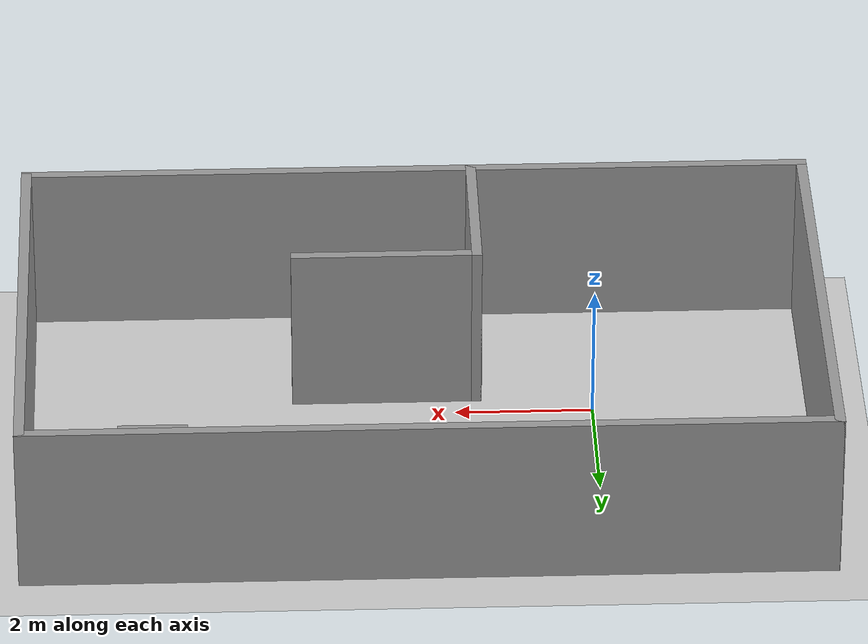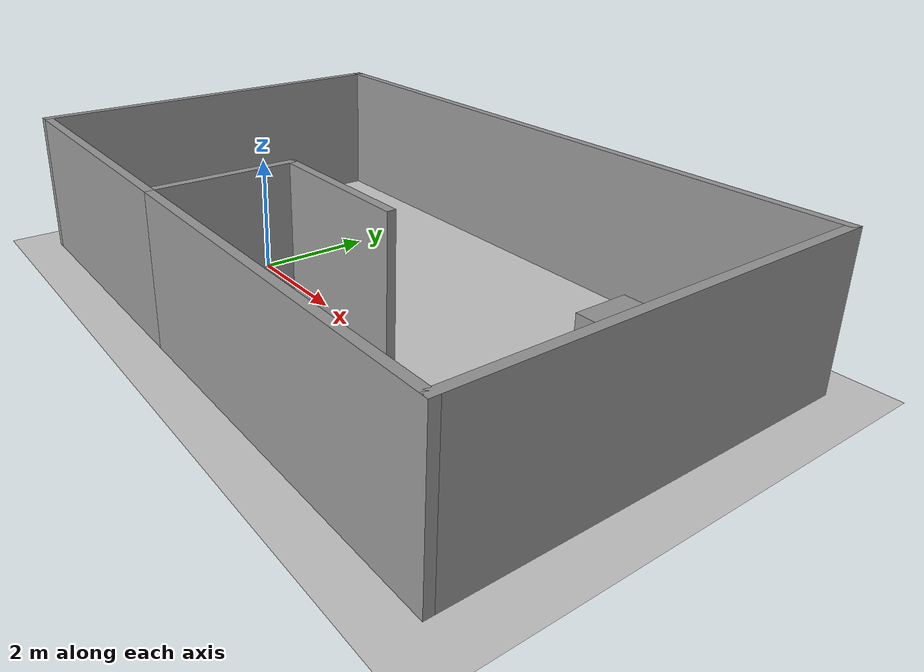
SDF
<sdf version='1.7'>
  <world name='default'>
    <!-- Gazebo Sim System Plugins -->
    <plugin filename="gz-sim-physics-system" name="gz::sim::systems::Physics"/>
    <plugin filename="gz-sim-sensors-system" name="gz::sim::systems::Sensors">
      <render_engine>ogre2</render_engine>
    </plugin>
    <plugin filename="gz-sim-contact-system" name="gz::sim::systems::Contact"/>
    <plugin filename="gz-sim-user-commands-system" name="gz::sim::systems::UserCommands"/>
    <plugin filename="gz-sim-scene-broadcaster-system" name="gz::sim::systems::SceneBroadcaster"/>

    <light name='sun' type='directional'>
      <cast_shadows>1</cast_shadows>
      <pose>0 0 10 0 -0 0</pose>
      <diffuse>0.8 0.8 0.8 1</diffuse>
      <specular>0.2 0.2 0.2 1</specular>
      <attenuation>
        <range>1000</range>
        <constant>0.9</constant>
        <linear>0.01</linear>
        <quadratic>0.001</quadratic>
      </attenuation>
      <direction>-0.5 0.1 -0.9</direction>
      <spot>
        <inner_angle>0</inner_angle>
        <outer_angle>0</outer_angle>
        <falloff>0</falloff>
      </spot>
    </light>
    <model name='ground_plane'>
      <static>1</static>
      <link name='link'>
        <collision name='collision'>
          <geometry>
            <plane>
              <normal>0 0 1</normal>
              <size>100 100</size>
            </plane>
          </geometry>
		<surface>
		  <friction>
		    <ode>
		      <mu>1.0</mu>
		      <mu2>1.0</mu2>
		    </ode>
		  </friction>
		  <contact>
		    <ode/>
		    <collide_bitmask>0xFFFF</collide_bitmask>
		  </contact>
		  <bounce>
		    <restitution>0.0</restitution>
		  </bounce>
		</surface>
          <max_contacts>10</max_contacts>
        </collision>
        <visual name='visual'>
          <cast_shadows>0</cast_shadows>
          <geometry>
            <plane>
              <normal>0 0 1</normal>
              <size>100 100</size>
            </plane>
          </geometry>
          <material>
            <script>
              <uri>file://media/materials/scripts/gazebo.material</uri>
              <name>Gazebo/Grey</name>
            </script>
          </material>
        </visual>
        <self_collide>0</self_collide>
        <enable_wind>0</enable_wind>
        <kinematic>0</kinematic>
      </link>
    </model>
    <gravity>0 0 -9.8</gravity>
    <magnetic_field>6e-06 2.3e-05 -4.2e-05</magnetic_field>
    <atmosphere type='adiabatic'/>
    <physics type='ode'>
      <max_step_size>0.001</max_step_size>
      <real_time_factor>1</real_time_factor>
      <real_time_update_rate>1000</real_time_update_rate>
    </physics>
    <scene>
      <ambient>0.4 0.4 0.4 1</ambient>
      <background>0.7 0.7 0.7 1</background>
      <shadows>1</shadows>
    </scene>
    <audio>
      <device>default</device>
    </audio>
    <wind/>
    <spherical_coordinates>
      <surface_model>EARTH_WGS84</surface_model>
      <latitude_deg>0</latitude_deg>
      <longitude_deg>0</longitude_deg>
      <elevation>0</elevation>
      <heading_deg>0</heading_deg>
    </spherical_coordinates>
    <model name='wall_world'>
      <pose>2.505 0.695 0 0 -0 0</pose>
      <link name='Wall_0'>
        <collision name='Wall_0_Collision'>
          <geometry>
            <box>
              <size>5 0.15 2.5</size>
            </box>
          </geometry>
          <pose>0 0 1.25 0 -0 0</pose>
          <max_contacts>10</max_contacts>
          <surface>
            <contact>
              <ode/>
            </contact>
            <bounce/>
            <friction>
              <torsional>
                <ode/>
              </torsional>
              <ode/>
            </friction>
          </surface>
        </collision>
        <visual name='Wall_0_Visual'>
          <pose>0 0 1.25 0 -0 0</pose>
          <geometry>
            <box>
              <size>5 0.15 2.5</size>
            </box>
          </geometry>
          <material>
            <script>
              <uri>file://media/materials/scripts/gazebo.material</uri>
              <name>Gazebo/Grey</name>
            </script>
            <ambient>1 1 1 1</ambient>
          </material>
          <meta>
            <layer>0</layer>
          </meta>
        </visual>
        <pose>-3.25 -3.425 0 0 -0 3.14159</pose>
        <self_collide>0</self_collide>
        <enable_wind>0</enable_wind>
        <kinematic>0</kinematic>
      </link>
      <link name='Wall_1'>
        <collision name='Wall_1_Collision'>
          <geometry>
            <box>
              <size>7 0.15 2.5</size>
            </box>
          </geometry>
          <pose>0 0 1.25 0 -0 0</pose>
          <max_contacts>10</max_contacts>
          <surface>
            <contact>
              <ode/>
            </contact>
            <bounce/>
            <friction>
              <torsional>
                <ode/>
              </torsional>
              <ode/>
            </friction>
          </surface>
        </collision>
        <visual name='Wall_1_Visual'>
          <pose>0 0 1.25 0 -0 0</pose>
          <geometry>
            <box>
              <size>7 0.15 2.5</size>
            </box>
          </geometry>
          <material>
            <script>
              <uri>file://media/materials/scripts/gazebo.material</uri>
              <name>Gazebo/Grey</name>
            </script>
            <ambient>1 1 1 1</ambient>
          </material>
          <meta>
            <layer>0</layer>
          </meta>
        </visual>
        <pose>-5.675 -0 0 0 -0 1.5708</pose>
        <self_collide>0</self_collide>
        <enable_wind>0</enable_wind>
        <kinematic>0</kinematic>
      </link>
      <link name='Wall_2'>
        <collision name='Wall_2_Collision'>
          <geometry>
            <box>
              <size>11.5 0.15 2.5</size>
            </box>
          </geometry>
          <pose>0 0 1.25 0 -0 0</pose>
          <max_contacts>10</max_contacts>
          <surface>
            <contact>
              <ode/>
            </contact>
            <bounce/>
            <friction>
              <torsional>
                <ode/>
              </torsional>
              <ode/>
            </friction>
          </surface>
        </collision>
        <visual name='Wall_2_Visual'>
          <pose>0 0 1.25 0 -0 0</pose>
          <geometry>
            <box>
              <size>11.5 0.15 2.5</size>
            </box>
          </geometry>
          <material>
            <script>
              <uri>file://media/materials/scripts/gazebo.material</uri>
              <name>Gazebo/Grey</name>
            </script>
            <ambient>1 1 1 1</ambient>
          </material>
          <meta>
            <layer>0</layer>
          </meta>
        </visual>
        <pose>-0 3.425 0 0 -0 0</pose>
        <self_collide>0</self_collide>
        <enable_wind>0</enable_wind>
        <kinematic>0</kinematic>
      </link>
      <link name='Wall_3'>
        <collision name='Wall_3_Collision'>
          <geometry>
            <box>
              <size>7 0.15 2.5</size>
            </box>
          </geometry>
          <pose>0 0 1.25 0 -0 0</pose>
          <max_contacts>10</max_contacts>
          <surface>
            <contact>
              <ode/>
            </contact>
            <bounce/>
            <friction>
              <torsional>
                <ode/>
              </torsional>
              <ode/>
            </friction>
          </surface>
        </collision>
        <visual name='Wall_3_Visual'>
          <pose>0 0 1.25 0 -0 0</pose>
          <geometry>
            <box>
              <size>7 0.15 2.5</size>
            </box>
          </geometry>
          <material>
            <script>
              <uri>file://media/materials/scripts/gazebo.material</uri>
              <name>Gazebo/Grey</name>
            </script>
            <ambient>1 1 1 1</ambient>
          </material>
          <meta>
            <layer>0</layer>
          </meta>
        </visual>
        <pose>5.675 -0 0 0 -0 -1.5708</pose>
        <self_collide>0</self_collide>
        <enable_wind>0</enable_wind>
        <kinematic>0</kinematic>
      </link>
      <link name='Wall_4'>
        <collision name='Wall_4_Collision'>
          <geometry>
            <box>
              <size>6.65 0.15 2.5</size>
            </box>
          </geometry>
          <pose>0 0 1.25 0 -0 0</pose>
          <max_contacts>10</max_contacts>
          <surface>
            <contact>
              <ode/>
            </contact>
            <bounce/>
            <friction>
              <torsional>
                <ode/>
              </torsional>
              <ode/>
            </friction>
          </surface>
        </collision>
        <visual name='Wall_4_Visual'>
          <pose>0 0 1.25 0 -0 0</pose>
          <geometry>
            <box>
              <size>6.65 0.15 2.5</size>
            </box>
          </geometry>
          <material>
            <script>
              <uri>file://media/materials/scripts/gazebo.material</uri>
              <name>Gazebo/Grey</name>
            </script>
            <ambient>1 1 1 1</ambient>
          </material>
          <meta>
            <layer>0</layer>
          </meta>
        </visual>
        <pose>2.425 -3.425 0 0 -0 3.14159</pose>
        <self_collide>0</self_collide>
        <enable_wind>0</enable_wind>
        <kinematic>0</kinematic>
      </link>
      <link name='Wall_5'>
        <collision name='Wall_5_Collision'>
          <geometry>
            <box>
              <size>2.5 0.15 2.5</size>
            </box>
          </geometry>
          <pose>0 0 1.25 0 -0 0</pose>
          <max_contacts>10</max_contacts>
          <surface>
            <contact>
              <ode/>
            </contact>
            <bounce/>
            <friction>
              <torsional>
                <ode/>
              </torsional>
              <ode/>
            </friction>
          </surface>
        </collision>
        <visual name='Wall_5_Visual'>
          <pose>0 0 1.25 0 -0 0</pose>
          <geometry>
            <box>
              <size>2.5 0.15 2.5</size>
            </box>
          </geometry>
          <material>
            <script>
              <uri>file://media/materials/scripts/gazebo.material</uri>
              <name>Gazebo/Grey</name>
            </script>
            <ambient>1 1 1 1</ambient>
          </material>
          <meta>
            <layer>0</layer>
          </meta>
        </visual>
        <pose>-0.825 -2.25 0 0 -0 1.5708</pose>
        <self_collide>0</self_collide>
        <enable_wind>0</enable_wind>
        <kinematic>0</kinematic>
      </link>
      <link name='Wall_6'>
        <collision name='Wall_6_Collision'>
          <geometry>
            <box>
              <size>2.75 0.15 2.5</size>
            </box>
          </geometry>
          <pose>0 0 1.25 0 -0 0</pose>
          <max_contacts>10</max_contacts>
          <surface>
            <contact>
              <ode/>
            </contact>
            <bounce/>
            <friction>
              <torsional>
                <ode/>
              </torsional>
              <ode/>
            </friction>
          </surface>
        </collision>
        <visual name='Wall_6_Visual'>
          <pose>0 0 1.25 0 -0 0</pose>
          <geometry>
            <box>
              <size>2.75 0.15 2.5</size>
            </box>
          </geometry>
          <material>
            <script>
              <uri>file://media/materials/scripts/gazebo.material</uri>
              <name>Gazebo/Grey</name>
            </script>
            <ambient>1 1 1 1</ambient>
          </material>
          <meta>
            <layer>0</layer>
          </meta>
        </visual>
        <pose>0.475 -1.075 0 0 -0 0</pose>
        <self_collide>0</self_collide>
        <enable_wind>0</enable_wind>
        <kinematic>0</kinematic>
      </link>
      <static>1</static>
    </model>
    <gui fullscreen='0'>
      <camera name='user_camera'>
        <pose>4.14193 -1.98691 12.119 0 1.3098 1.4842</pose>
        <view_controller>orbit</view_controller>
        <projection_type>perspective</projection_type>
      </camera>
    </gui>

    <model name='unit_box'>
      <pose>6.36687 2.19784 0.5 0 -0 0</pose>
      <link name='link'>
        <inertial>
          <mass>1</mass>
          <inertia>
            <ixx>0.166667</ixx>
            <ixy>0</ixy>
            <ixz>0</ixz>
            <iyy>0.166667</iyy>
            <iyz>0</iyz>
            <izz>0.166667</izz>
          </inertia>
          <pose>0 0 0 0 -0 0</pose>
        </inertial>
        <collision name='collision'>
          <geometry>
            <box>
              <size>1 1 1</size>
            </box>
          </geometry>
          <max_contacts>10</max_contacts>
          <surface>
            <contact>
              <ode/>
            </contact>
            <bounce/>
            <friction>
              <torsional>
                <ode/>
              </torsional>
              <ode/>
            </friction>
          </surface>
        </collision>
        <visual name='visual'>
          <geometry>
            <box>
              <size>1 1 1</size>
            </box>
          </geometry>
          <material>
            <script>
              <name>Gazebo/Grey</name>
              <uri>file://media/materials/scripts/gazebo.material</uri>
            </script>
          </material>
        </visual>
        <self_collide>0</self_collide>
        <enable_wind>0</enable_wind>
        <kinematic>0</kinematic>
      </link>
    </model>
  </world>
</sdf>
